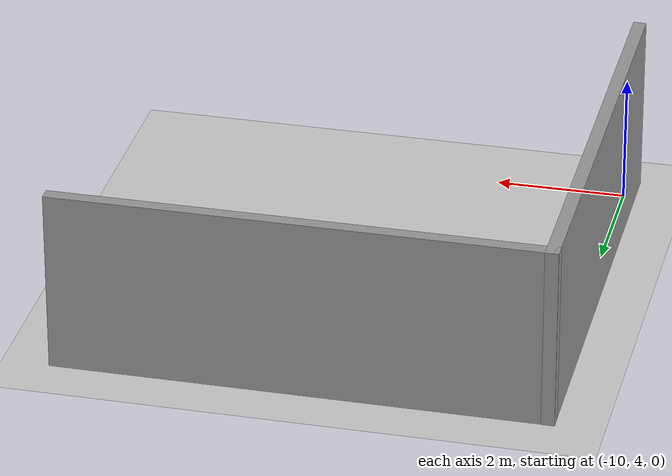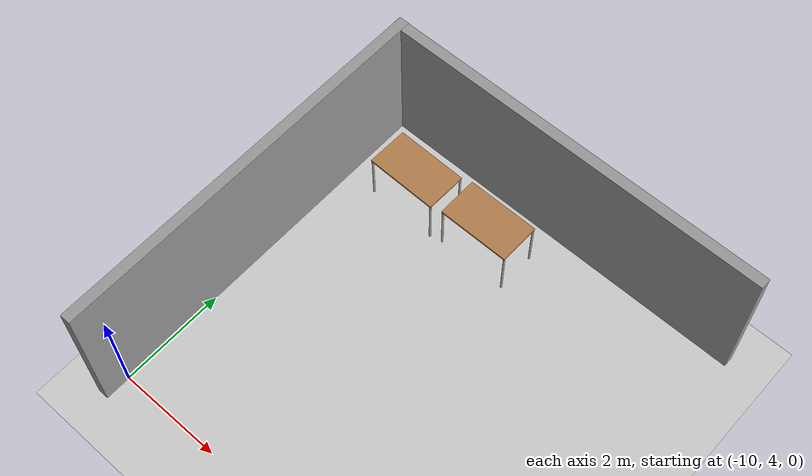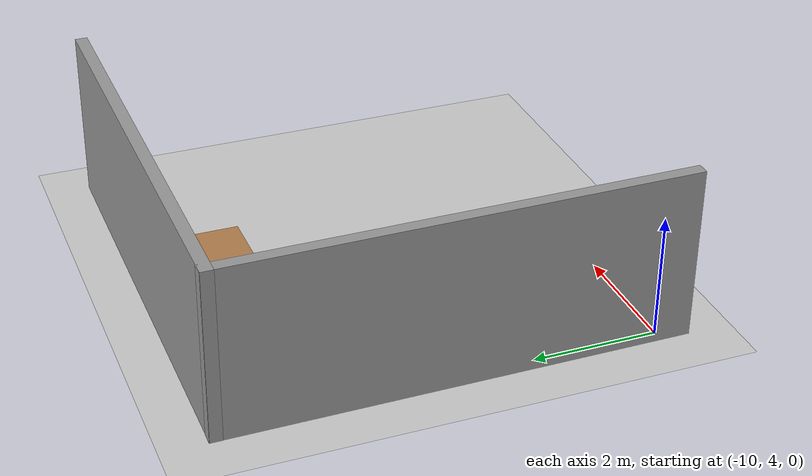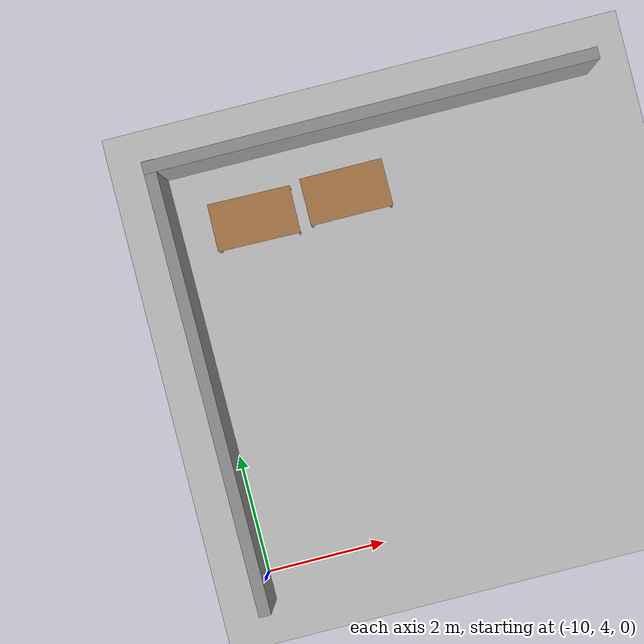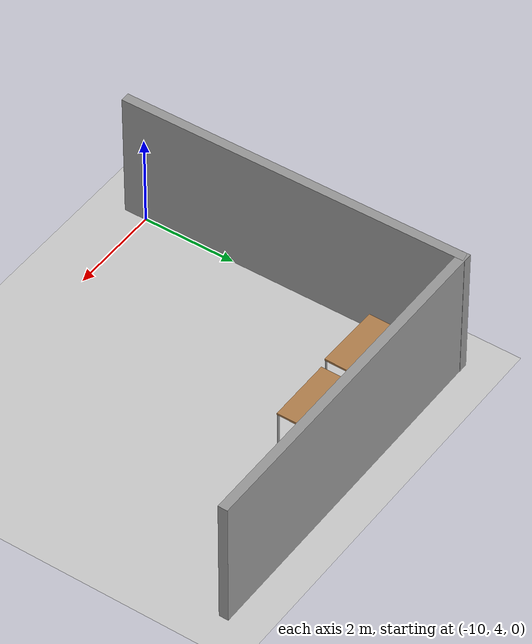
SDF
<sdf version="1.6">
 <world name="default">
  <model name="ground_plane">
   <static>1</static>
   <link name="link">
    <collision name="collision">
     <geometry><plane><normal>0 0 1</normal><size>100 100</size></plane></geometry>
     <surface><friction><ode><mu>100</mu><mu2>50</mu2></ode></friction></surface>
    </collision>
    <visual name="visual">
     <cast_shadows>0</cast_shadows>
     <geometry><plane><normal>0 0 1</normal><size>100 100</size></plane></geometry>
     <material>
      <script><uri>file://media/materials/scripts/gazebo.material</uri><name>Gazebo/Grey</name></script>
     </material>
    </visual>
   </link>
  </model>
  <model name="grey_wall">
   <static>1</static>
   <link name="link">
    <pose>0 0 1.4 0 -0 0</pose>
    <collision name="collision"><geometry><box><size>7.5 0.2 2.8</size></box></geometry></collision>
    <visual name="visual">
     <cast_shadows>0</cast_shadows>
     <geometry><box><size>7.5 0.2 2.8</size></box></geometry>
     <material>
      <script>
       <uri>model://grey_wall/materials/scripts</uri>
       <uri>model://grey_wall/materials/textures</uri>
       <name>vrc/grey_wall</name>
      </script>
     </material>
    </visual>
   </link>
   <pose>-6.47613 10.9124 0 0 -0 0</pose>
  </model>
  <model name="grey_wall_clone_1">
   <static>1</static>
   <link name="link">
    <pose>0 0 1.4 0 -0 0</pose>
    <collision name="collision"><geometry><box><size>7.5 0.2 2.8</size></box></geometry></collision>
    <visual name="visual">
     <cast_shadows>0</cast_shadows>
     <geometry><box><size>7.5 0.2 2.8</size></box></geometry>
     <material>
      <script>
       <uri>model://grey_wall/materials/scripts</uri>
       <uri>model://grey_wall/materials/textures</uri>
       <name>vrc/grey_wall</name>
      </script>
     </material>
    </visual>
   </link>
   <pose>-10.106 7.26818 0 0 0 -1.56602</pose>
  </model>
  <model name="table_clone_0">
   <static>0</static>
   <link name="link">
    <collision name="surface">
     <pose>0 0 1 0 -0 0</pose>
     <geometry><box><size>1.5 0.8 0.03</size></box></geometry>
     <surface><friction><ode><mu>0.6</mu><mu2>0.6</mu2></ode></friction></surface>
    </collision>
    <visual name="visual1">
     <pose>0 0 1 0 -0 0</pose>
     <geometry><box><size>1.4 0.8 0.04</size></box></geometry>
     <material>
      <script><uri>file://media/materials/scripts/gazebo.material</uri><name>Gazebo/Wood</name></script>
     </material>
    </visual>
    <collision name="front_left_leg">
     <pose>0.68 0.38 0.5 0 -0 0</pose>
     <geometry><cylinder><radius>0.02</radius><length>1</length></cylinder></geometry>
    </collision>
    <visual name="front_left_leg">
     <pose>0.68 0.38 0.5 0 -0 0</pose>
     <geometry><cylinder><radius>0.02</radius><length>1</length></cylinder></geometry>
     <material>
      <script><uri>file://media/materials/scripts/gazebo.material</uri><name>Gazebo/Grey</name></script>
     </material>
    </visual>
    <collision name="front_right_leg">
     <pose>0.68 -0.38 0.5 0 -0 0</pose>
     <geometry><cylinder><radius>0.02</radius><length>1</length></cylinder></geometry>
    </collision>
    <visual name="front_right_leg">
     <pose>0.68 -0.38 0.5 0 -0 0</pose>
     <geometry><cylinder><radius>0.02</radius><length>1</length></cylinder></geometry>
     <material>
      <script><uri>file://media/materials/scripts/gazebo.material</uri><name>Gazebo/Grey</name></script>
     </material>
    </visual>
    <collision name="back_right_leg">
     <pose>-0.68 -0.38 0.5 0 -0 0</pose>
     <geometry><cylinder><radius>0.02</radius><length>1</length></cylinder></geometry>
    </collision>
    <visual name="back_right_leg">
     <pose>-0.68 -0.38 0.5 0 -0 0</pose>
     <geometry><cylinder><radius>0.02</radius><length>1</length></cylinder></geometry>
     <material>
      <script><uri>file://media/materials/scripts/gazebo.material</uri><name>Gazebo/Grey</name></script>
     </material>
    </visual>
    <collision name="back_left_leg">
     <pose>-0.68 0.38 0.5 0 -0 0</pose>
     <geometry><cylinder><radius>0.02</radius><length>1</length></cylinder></geometry>
    </collision>
    <visual name="back_left_leg">
     <pose>-0.68 0.38 0.5 0 -0 0</pose>
     <geometry><cylinder><radius>0.02</radius><length>1</length></cylinder></geometry>
     <material>
      <script><uri>file://media/materials/scripts/gazebo.material</uri><name>Gazebo/Grey</name></script>
     </material>
    </visual>
    <inertial>
     <inertia><ixx>1</ixx><ixy>0</ixy><ixz>0</ixz><iyy>1</iyy><iyz>0</iyz><izz>1</izz></inertia>
     <mass>1</mass>
    </inertial>
   </link>
   <pose>-8.75237 9.78791 -3e-06 0 4e-06 -0.016646</pose>
  </model>
  <model name="table_clone_1">
   <static>0</static>
   <link name="link">
    <collision name="surface">
     <pose>0 0 1 0 -0 0</pose>
     <geometry><box><size>1.5 0.8 0.03</size></box></geometry>
     <surface><friction><ode><mu>0.6</mu><mu2>0.6</mu2></ode></friction></surface>
    </collision>
    <visual name="visual1">
     <pose>0 0 1 0 -0 0</pose>
     <geometry><box><size>1.4 0.8 0.04</size></box></geometry>
     <material>
      <script><uri>file://media/materials/scripts/gazebo.material</uri><name>Gazebo/Wood</name></script>
     </material>
    </visual>
    <collision name="front_left_leg">
     <pose>0.68 0.38 0.5 0 -0 0</pose>
     <geometry><cylinder><radius>0.02</radius><length>1</length></cylinder></geometry>
    </collision>
    <visual name="front_left_leg">
     <pose>0.68 0.38 0.5 0 -0 0</pose>
     <geometry><cylinder><radius>0.02</radius><length>1</length></cylinder></geometry>
     <material>
      <script><uri>file://media/materials/scripts/gazebo.material</uri><name>Gazebo/Grey</name></script>
     </material>
    </visual>
    <collision name="front_right_leg">
     <pose>0.68 -0.38 0.5 0 -0 0</pose>
     <geometry><cylinder><radius>0.02</radius><length>1</length></cylinder></geometry>
    </collision>
    <visual name="front_right_leg">
     <pose>0.68 -0.38 0.5 0 -0 0</pose>
     <geometry><cylinder><radius>0.02</radius><length>1</length></cylinder></geometry>
     <material>
      <script><uri>file://media/materials/scripts/gazebo.material</uri><name>Gazebo/Grey</name></script>
     </material>
    </visual>
    <collision name="back_right_leg">
     <pose>-0.68 -0.38 0.5 0 -0 0</pose>
     <geometry><cylinder><radius>0.02</radius><length>1</length></cylinder></geometry>
    </collision>
    <visual name="back_right_leg">
     <pose>-0.68 -0.38 0.5 0 -0 0</pose>
     <geometry><cylinder><radius>0.02</radius><length>1</length></cylinder></geometry>
     <material>
      <script><uri>file://media/materials/scripts/gazebo.material</uri><name>Gazebo/Grey</name></script>
     </material>
    </visual>
    <collision name="back_left_leg">
     <pose>-0.68 0.38 0.5 0 -0 0</pose>
     <geometry><cylinder><radius>0.02</radius><length>1</length></cylinder></geometry>
    </collision>
    <visual name="back_left_leg">
     <pose>-0.68 0.38 0.5 0 -0 0</pose>
     <geometry><cylinder><radius>0.02</radius><length>1</length></cylinder></geometry>
     <material>
      <script><uri>file://media/materials/scripts/gazebo.material</uri><name>Gazebo/Grey</name></script>
     </material>
    </visual>
    <inertial>
     <inertia><ixx>1</ixx><ixy>0</ixy><ixz>0</ixz><iyy>1</iyy><iyz>0</iyz><izz>1</izz></inertia>
     <mass>1</mass>
    </inertial>
   </link>
   <pose>-7.16396 9.83666 -9e-06 0 -1e-06 0</pose>
  </model>
 </world>
</sdf>
